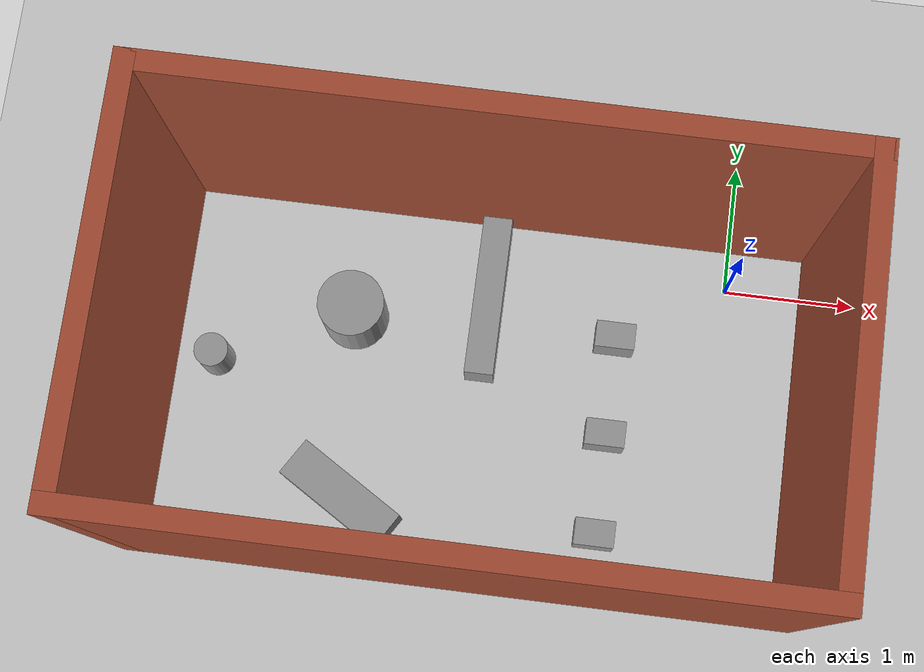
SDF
<sdf version='1.7'>
  <world name='default'>
    <light name='sun' type='directional'>
      <cast_shadows>1</cast_shadows>
      <pose>0 0 10 0 -0 0</pose>
      <diffuse>0.8 0.8 0.8 1</diffuse>
      <specular>0.2 0.2 0.2 1</specular>
      <attenuation>
        <range>1000</range>
        <constant>0.9</constant>
        <linear>0.01</linear>
        <quadratic>0.001</quadratic>
      </attenuation>
      <direction>-0.5 0.1 -0.9</direction>
      <spot>
        <inner_angle>0</inner_angle>
        <outer_angle>0</outer_angle>
        <falloff>0</falloff>
      </spot>
    </light>
    <model name='ground_plane'>
      <static>1</static>
      <link name='link'>
        <collision name='collision'>
          <geometry>
            <plane>
              <normal>0 0 1</normal>
              <size>100 100</size>
            </plane>
          </geometry>
          <max_contacts>10</max_contacts>
          <surface>
            <contact>
              <ode/>
            </contact>
            <bounce/>
            <friction>
              <torsional>
                <ode/>
              </torsional>
              <ode/>
            </friction>
          </surface>
        </collision>
        <visual name='visual'>
          <geometry>
            <plane>
              <normal>0 0 1</normal>
              <size>100 100</size>
            </plane>
          </geometry>
        </visual>
        <self_collide>0</self_collide>
        <enable_wind>0</enable_wind>
        <kinematic>0</kinematic>
      </link>
    </model>
    <gravity>0 0 -9.8</gravity>
    <magnetic_field>6e-06 2.3e-05 -4.2e-05</magnetic_field>
    <atmosphere type='adiabatic'/>
    <physics type='ode'>
      <max_step_size>0.001</max_step_size>
      <real_time_factor>1</real_time_factor>
      <real_time_update_rate>1000</real_time_update_rate>
    </physics>
    <scene>
      <ambient>0.4 0.4 0.4 1</ambient>
      <background>0.7 0.7 0.7 1</background>
      <shadows>1</shadows>
    </scene>
    <wind/>
    <spherical_coordinates>
      <surface_model>EARTH_WGS84</surface_model>
      <latitude_deg>0</latitude_deg>
      <longitude_deg>0</longitude_deg>
      <elevation>0</elevation>
      <heading_deg>0</heading_deg>
    </spherical_coordinates>
    <model name='walls'>
      <pose>-1.7745 -1.03402 0 0 -0 0</pose>
      <link name='Wall_14'>
        <collision name='Wall_14_Collision'>
          <geometry>
            <box>
              <size>3 0.15 2.5</size>
            </box>
          </geometry>
          <pose>0 0 1.25 0 -0 0</pose>
          <max_contacts>10</max_contacts>
          <surface>
            <contact>
              <ode/>
            </contact>
            <bounce/>
            <friction>
              <torsional>
                <ode/>
              </torsional>
              <ode/>
            </friction>
          </surface>
        </collision>
        <visual name='Wall_14_Visual'>
          <pose>0 0 1.25 0 -0 0</pose>
          <geometry>
            <box>
              <size>3 0.15 2.5</size>
            </box>
          </geometry>
          <material>
            <script>
              <uri>file://media/materials/scripts/gazebo.material</uri>
              <name>Gazebo/Bricks</name>
            </script>
            <ambient>1 1 1 1</ambient>
          </material>
          <meta>
            <layer>0</layer>
          </meta>
        </visual>
        <pose>2.425 0 0 0 -0 -1.5708</pose>
        <self_collide>0</self_collide>
        <enable_wind>0</enable_wind>
        <kinematic>0</kinematic>
      </link>
      <link name='Wall_15'>
        <collision name='Wall_15_Collision'>
          <geometry>
            <box>
              <size>5 0.15 2.5</size>
            </box>
          </geometry>
          <pose>0 0 1.25 0 -0 0</pose>
          <max_contacts>10</max_contacts>
          <surface>
            <contact>
              <ode/>
            </contact>
            <bounce/>
            <friction>
              <torsional>
                <ode/>
              </torsional>
              <ode/>
            </friction>
          </surface>
        </collision>
        <visual name='Wall_15_Visual'>
          <pose>0 0 1.25 0 -0 0</pose>
          <geometry>
            <box>
              <size>5 0.15 2.5</size>
            </box>
          </geometry>
          <material>
            <script>
              <uri>file://media/materials/scripts/gazebo.material</uri>
              <name>Gazebo/Bricks</name>
            </script>
            <ambient>1 1 1 1</ambient>
          </material>
          <meta>
            <layer>0</layer>
          </meta>
        </visual>
        <pose>-0 -1.425 0 0 -0 3.14159</pose>
        <self_collide>0</self_collide>
        <enable_wind>0</enable_wind>
        <kinematic>0</kinematic>
      </link>
      <link name='Wall_16'>
        <collision name='Wall_16_Collision'>
          <geometry>
            <box>
              <size>3 0.15 2.5</size>
            </box>
          </geometry>
          <pose>0 0 1.25 0 -0 0</pose>
          <max_contacts>10</max_contacts>
          <surface>
            <contact>
              <ode/>
            </contact>
            <bounce/>
            <friction>
              <torsional>
                <ode/>
              </torsional>
              <ode/>
            </friction>
          </surface>
        </collision>
        <visual name='Wall_16_Visual'>
          <pose>0 0 1.25 0 -0 0</pose>
          <geometry>
            <box>
              <size>3 0.15 2.5</size>
            </box>
          </geometry>
          <material>
            <script>
              <uri>file://media/materials/scripts/gazebo.material</uri>
              <name>Gazebo/Bricks</name>
            </script>
            <ambient>1 1 1 1</ambient>
          </material>
          <meta>
            <layer>0</layer>
          </meta>
        </visual>
        <pose>-2.425 0 0 0 -0 1.5708</pose>
        <self_collide>0</self_collide>
        <enable_wind>0</enable_wind>
        <kinematic>0</kinematic>
      </link>
      <link name='Wall_7'>
        <collision name='Wall_7_Collision'>
          <geometry>
            <box>
              <size>5 0.15 2.5</size>
            </box>
          </geometry>
          <pose>0 0 1.25 0 -0 0</pose>
          <max_contacts>10</max_contacts>
          <surface>
            <contact>
              <ode/>
            </contact>
            <bounce/>
            <friction>
              <torsional>
                <ode/>
              </torsional>
              <ode/>
            </friction>
          </surface>
        </collision>
        <visual name='Wall_7_Visual'>
          <pose>0 0 1.25 0 -0 0</pose>
          <geometry>
            <box>
              <size>5 0.15 2.5</size>
            </box>
          </geometry>
          <material>
            <script>
              <uri>file://media/materials/scripts/gazebo.material</uri>
              <name>Gazebo/Bricks</name>
            </script>
            <ambient>1 1 1 1</ambient>
          </material>
          <meta>
            <layer>0</layer>
          </meta>
        </visual>
        <pose>-0 1.425 0 0 -0 0</pose>
        <self_collide>0</self_collide>
        <enable_wind>0</enable_wind>
        <kinematic>0</kinematic>
      </link>
      <static>1</static>
    </model>
    <model name='walls_seven'>
      <link name='link_2'>
        <inertial>
          <mass>1</mass>
          <inertia>
            <ixx>0.166667</ixx>
            <ixy>0</ixy>
            <ixz>0</ixz>
            <iyy>0.166667</iyy>
            <iyz>0</iyz>
            <izz>0.166667</izz>
          </inertia>
          <pose>-0 0 0 0 -0 0</pose>
        </inertial>
        <pose>-0.006667 0.75 0.125 0 -0 0</pose>
        <gravity>1</gravity>
        <self_collide>0</self_collide>
        <kinematic>0</kinematic>
        <enable_wind>0</enable_wind>
        <visual name='visual'>
          <pose>0 0 0 0 -0 0</pose>
          <geometry>
            <box>
              <size>0.3 0.2 0.3</size>
            </box>
          </geometry>
          <material>
            <lighting>1</lighting>
            <script>
              <uri>file://media/materials/scripts/gazebo.material</uri>
              <name>Gazebo/Grey</name>
            </script>
            <shader type='pixel'>
              <normal_map>__default__</normal_map>
            </shader>
            <ambient>0.3 0.3 0.3 1</ambient>
            <diffuse>0.7 0.7 0.7 1</diffuse>
            <specular>0.01 0.01 0.01 1</specular>
            <emissive>0 0 0 1</emissive>
          </material>
          <transparency>0</transparency>
          <cast_shadows>1</cast_shadows>
        </visual>
        <collision name='collision'>
          <laser_retro>0</laser_retro>
          <max_contacts>10</max_contacts>
          <pose>0 0 0 0 -0 0</pose>
          <geometry>
            <box>
              <size>0.3 0.2 0.3</size>
            </box>
          </geometry>
          <surface>
            <friction>
              <ode>
                <mu>1</mu>
                <mu2>1</mu2>
                <fdir1>0 0 0</fdir1>
                <slip1>0</slip1>
                <slip2>0</slip2>
              </ode>
              <torsional>
                <coefficient>1</coefficient>
                <patch_radius>0</patch_radius>
                <surface_radius>0</surface_radius>
                <use_patch_radius>1</use_patch_radius>
                <ode>
                  <slip>0</slip>
                </ode>
              </torsional>
            </friction>
            <bounce>
              <restitution_coefficient>0</restitution_coefficient>
              <threshold>1e+06</threshold>
            </bounce>
            <contact>
              <collide_without_contact>0</collide_without_contact>
              <collide_without_contact_bitmask>1</collide_without_contact_bitmask>
              <collide_bitmask>1</collide_bitmask>
              <ode>
                <soft_cfm>0</soft_cfm>
                <soft_erp>0.2</soft_erp>
                <kp>1e+13</kp>
                <kd>1</kd>
                <max_vel>0.01</max_vel>
                <min_depth>0</min_depth>
              </ode>
              <bullet>
                <split_impulse>1</split_impulse>
                <split_impulse_penetration_threshold>-0.01</split_impulse_penetration_threshold>
                <soft_cfm>0</soft_cfm>
                <soft_erp>0.2</soft_erp>
                <kp>1e+13</kp>
                <kd>1</kd>
              </bullet>
            </contact>
          </surface>
        </collision>
      </link>
      <link name='link_2_clone'>
        <inertial>
          <mass>1</mass>
          <inertia>
            <ixx>0.166667</ixx>
            <ixy>0</ixy>
            <ixz>0</ixz>
            <iyy>0.166667</iyy>
            <iyz>0</iyz>
            <izz>0.166667</izz>
          </inertia>
          <pose>0 0 0 0 -0 0</pose>
        </inertial>
        <pose>0.003333 -0.75 0.125 0 -0 0</pose>
        <gravity>1</gravity>
        <self_collide>0</self_collide>
        <kinematic>0</kinematic>
        <enable_wind>0</enable_wind>
        <visual name='visual'>
          <pose>0 0 0 0 -0 0</pose>
          <geometry>
            <box>
              <size>0.3 0.2 0.3</size>
            </box>
          </geometry>
          <material>
            <lighting>1</lighting>
            <script>
              <uri>file://media/materials/scripts/gazebo.material</uri>
              <name>Gazebo/Grey</name>
            </script>
            <shader type='pixel'>
              <normal_map>__default__</normal_map>
            </shader>
            <ambient>0.3 0.3 0.3 1</ambient>
            <diffuse>0.7 0.7 0.7 1</diffuse>
            <specular>0.01 0.01 0.01 1</specular>
            <emissive>0 0 0 1</emissive>
          </material>
          <transparency>0</transparency>
          <cast_shadows>1</cast_shadows>
        </visual>
        <collision name='collision'>
          <laser_retro>0</laser_retro>
          <max_contacts>10</max_contacts>
          <pose>0 0 0 0 -0 0</pose>
          <geometry>
            <box>
              <size>0.3 0.2 0.3</size>
            </box>
          </geometry>
          <surface>
            <friction>
              <ode>
                <mu>1</mu>
                <mu2>1</mu2>
                <fdir1>0 0 0</fdir1>
                <slip1>0</slip1>
                <slip2>0</slip2>
              </ode>
              <torsional>
                <coefficient>1</coefficient>
                <patch_radius>0</patch_radius>
                <surface_radius>0</surface_radius>
                <use_patch_radius>1</use_patch_radius>
                <ode>
                  <slip>0</slip>
                </ode>
              </torsional>
            </friction>
            <bounce>
              <restitution_coefficient>0</restitution_coefficient>
              <threshold>1e+06</threshold>
            </bounce>
            <contact>
              <collide_without_contact>0</collide_without_contact>
              <collide_without_contact_bitmask>1</collide_without_contact_bitmask>
              <collide_bitmask>1</collide_bitmask>
              <ode>
                <soft_cfm>0</soft_cfm>
                <soft_erp>0.2</soft_erp>
                <kp>1e+13</kp>
                <kd>1</kd>
                <max_vel>0.01</max_vel>
                <min_depth>0</min_depth>
              </ode>
              <bullet>
                <split_impulse>1</split_impulse>
                <split_impulse_penetration_threshold>-0.01</split_impulse_penetration_threshold>
                <soft_cfm>0</soft_cfm>
                <soft_erp>0.2</soft_erp>
                <kp>1e+13</kp>
                <kd>1</kd>
              </bullet>
            </contact>
          </surface>
        </collision>
      </link>
      <link name='link_3'>
        <inertial>
          <mass>1</mass>
          <inertia>
            <ixx>0.166667</ixx>
            <ixy>0</ixy>
            <ixz>0</ixz>
            <iyy>0.166667</iyy>
            <iyz>0</iyz>
            <izz>0.166667</izz>
          </inertia>
          <pose>0 0 0 0 -0 0</pose>
        </inertial>
        <pose>0 0 0.125 0 -0 0</pose>
        <gravity>1</gravity>
        <self_collide>0</self_collide>
        <kinematic>0</kinematic>
        <enable_wind>0</enable_wind>
        <visual name='visual'>
          <pose>0 0 0 0 -0 0</pose>
          <geometry>
            <box>
              <size>0.3 0.2 0.3</size>
            </box>
          </geometry>
          <material>
            <lighting>1</lighting>
            <script>
              <uri>file://media/materials/scripts/gazebo.material</uri>
              <name>Gazebo/Grey</name>
            </script>
            <shader type='pixel'>
              <normal_map>__default__</normal_map>
            </shader>
            <ambient>0.3 0.3 0.3 1</ambient>
            <diffuse>0.7 0.7 0.7 1</diffuse>
            <specular>0.01 0.01 0.01 1</specular>
            <emissive>0 0 0 1</emissive>
          </material>
          <transparency>0</transparency>
          <cast_shadows>1</cast_shadows>
        </visual>
        <collision name='collision'>
          <laser_retro>0</laser_retro>
          <max_contacts>10</max_contacts>
          <pose>0 0 0 0 -0 0</pose>
          <geometry>
            <box>
              <size>0.3 0.2 0.3</size>
            </box>
          </geometry>
          <surface>
            <friction>
              <ode>
                <mu>1</mu>
                <mu2>1</mu2>
                <fdir1>0 0 0</fdir1>
                <slip1>0</slip1>
                <slip2>0</slip2>
              </ode>
              <torsional>
                <coefficient>1</coefficient>
                <patch_radius>0</patch_radius>
                <surface_radius>0</surface_radius>
                <use_patch_radius>1</use_patch_radius>
                <ode>
                  <slip>0</slip>
                </ode>
              </torsional>
            </friction>
            <bounce>
              <restitution_coefficient>0</restitution_coefficient>
              <threshold>1e+06</threshold>
            </bounce>
            <contact>
              <collide_without_contact>0</collide_without_contact>
              <collide_without_contact_bitmask>1</collide_without_contact_bitmask>
              <collide_bitmask>1</collide_bitmask>
              <ode>
                <soft_cfm>0</soft_cfm>
                <soft_erp>0.2</soft_erp>
                <kp>1e+13</kp>
                <kd>1</kd>
                <max_vel>0.01</max_vel>
                <min_depth>0</min_depth>
              </ode>
              <bullet>
                <split_impulse>1</split_impulse>
                <split_impulse_penetration_threshold>-0.01</split_impulse_penetration_threshold>
                <soft_cfm>0</soft_cfm>
                <soft_erp>0.2</soft_erp>
                <kp>1e+13</kp>
                <kd>1</kd>
              </bullet>
            </contact>
          </surface>
        </collision>
      </link>
      <link name='link_5'>
        <inertial>
          <mass>1</mass>
          <inertia>
            <ixx>0.166667</ixx>
            <ixy>0</ixy>
            <ixz>0</ixz>
            <iyy>0.166667</iyy>
            <iyz>0</iyz>
            <izz>0.166667</izz>
          </inertia>
          <pose>0.1 0 0 0 -0 0</pose>
        </inertial>
        <pose>-1.9 -0.7 0.155 0 -0 1.0177</pose>
        <gravity>1</gravity>
        <self_collide>0</self_collide>
        <kinematic>0</kinematic>
        <enable_wind>0</enable_wind>
        <visual name='visual'>
          <pose>0 0 0 0 -0 0</pose>
          <geometry>
            <box>
              <size>0.31 0.9 0.31</size>
            </box>
          </geometry>
          <material>
            <lighting>1</lighting>
            <script>
              <uri>file://media/materials/scripts/gazebo.material</uri>
              <name>Gazebo/Grey</name>
            </script>
            <shader type='pixel'>
              <normal_map>__default__</normal_map>
            </shader>
            <ambient>0.3 0.3 0.3 1</ambient>
            <diffuse>0.7 0.7 0.7 1</diffuse>
            <specular>0.01 0.01 0.01 1</specular>
            <emissive>0 0 0 1</emissive>
          </material>
          <transparency>0</transparency>
          <cast_shadows>1</cast_shadows>
        </visual>
        <collision name='collision'>
          <laser_retro>0</laser_retro>
          <max_contacts>10</max_contacts>
          <pose>0 0 0 0 -0 0</pose>
          <geometry>
            <box>
              <size>0.31 0.9 0.31</size>
            </box>
          </geometry>
          <surface>
            <friction>
              <ode>
                <mu>1</mu>
                <mu2>1</mu2>
                <fdir1>0 0 0</fdir1>
                <slip1>0</slip1>
                <slip2>0</slip2>
              </ode>
              <torsional>
                <coefficient>1</coefficient>
                <patch_radius>0</patch_radius>
                <surface_radius>0</surface_radius>
                <use_patch_radius>1</use_patch_radius>
                <ode>
                  <slip>0</slip>
                </ode>
              </torsional>
            </friction>
            <bounce>
              <restitution_coefficient>0</restitution_coefficient>
              <threshold>1e+06</threshold>
            </bounce>
            <contact>
              <collide_without_contact>0</collide_without_contact>
              <collide_without_contact_bitmask>1</collide_without_contact_bitmask>
              <collide_bitmask>1</collide_bitmask>
              <ode>
                <soft_cfm>0</soft_cfm>
                <soft_erp>0.2</soft_erp>
                <kp>1e+13</kp>
                <kd>1</kd>
                <max_vel>0.01</max_vel>
                <min_depth>0</min_depth>
              </ode>
              <bullet>
                <split_impulse>1</split_impulse>
                <split_impulse_penetration_threshold>-0.01</split_impulse_penetration_threshold>
                <soft_cfm>0</soft_cfm>
                <soft_erp>0.2</soft_erp>
                <kp>1e+13</kp>
                <kd>1</kd>
              </bullet>
            </contact>
          </surface>
        </collision>
      </link>
      <link name='link_6'>
        <inertial>
          <mass>1</mass>
          <inertia>
            <ixx>0.145833</ixx>
            <ixy>0</ixy>
            <ixz>0</ixz>
            <iyy>0.145833</iyy>
            <iyz>0</iyz>
            <izz>0.125</izz>
          </inertia>
          <pose>0 0 0 0 -0 0</pose>
        </inertial>
        <pose>-2 0.7 0.25 0 -0 0</pose>
        <gravity>1</gravity>
        <self_collide>0</self_collide>
        <kinematic>0</kinematic>
        <enable_wind>0</enable_wind>
        <visual name='visual'>
          <pose>0 0 0 0 -0 0</pose>
          <geometry>
            <cylinder>
              <radius>0.25</radius>
              <length>0.5</length>
            </cylinder>
          </geometry>
          <material>
            <lighting>1</lighting>
            <script>
              <uri>file://media/materials/scripts/gazebo.material</uri>
              <name>Gazebo/Grey</name>
            </script>
            <shader type='pixel'>
              <normal_map>__default__</normal_map>
            </shader>
            <ambient>0.3 0.3 0.3 1</ambient>
            <diffuse>0.7 0.7 0.7 1</diffuse>
            <specular>0.01 0.01 0.01 1</specular>
            <emissive>0 0 0 1</emissive>
          </material>
          <transparency>0</transparency>
          <cast_shadows>1</cast_shadows>
        </visual>
        <collision name='collision'>
          <laser_retro>0</laser_retro>
          <max_contacts>10</max_contacts>
          <pose>0 0 0 0 -0 0</pose>
          <geometry>
            <cylinder>
              <radius>0.25</radius>
              <length>0.5</length>
            </cylinder>
          </geometry>
          <surface>
            <friction>
              <ode>
                <mu>1</mu>
                <mu2>1</mu2>
                <fdir1>0 0 0</fdir1>
                <slip1>0</slip1>
                <slip2>0</slip2>
              </ode>
              <torsional>
                <coefficient>1</coefficient>
                <patch_radius>0</patch_radius>
                <surface_radius>0</surface_radius>
                <use_patch_radius>1</use_patch_radius>
                <ode>
                  <slip>0</slip>
                </ode>
              </torsional>
            </friction>
            <bounce>
              <restitution_coefficient>0</restitution_coefficient>
              <threshold>1e+06</threshold>
            </bounce>
            <contact>
              <collide_without_contact>0</collide_without_contact>
              <collide_without_contact_bitmask>1</collide_without_contact_bitmask>
              <collide_bitmask>1</collide_bitmask>
              <ode>
                <soft_cfm>0</soft_cfm>
                <soft_erp>0.2</soft_erp>
                <kp>1e+13</kp>
                <kd>1</kd>
                <max_vel>0.01</max_vel>
                <min_depth>0</min_depth>
              </ode>
              <bullet>
                <split_impulse>1</split_impulse>
                <split_impulse_penetration_threshold>-0.01</split_impulse_penetration_threshold>
                <soft_cfm>0</soft_cfm>
                <soft_erp>0.2</soft_erp>
                <kp>1e+13</kp>
                <kd>1</kd>
              </bullet>
            </contact>
          </surface>
        </collision>
      </link>
      <link name='link_7'>
        <inertial>
          <mass>1</mass>
          <inertia>
            <ixx>0.145833</ixx>
            <ixy>0</ixy>
            <ixz>0</ixz>
            <iyy>0.145833</iyy>
            <iyz>0</iyz>
            <izz>0.125</izz>
          </inertia>
          <pose>0 0 0 0 -0 0</pose>
        </inertial>
        <pose>-2.93633 0.189525 0.5 0 -0 0</pose>
        <gravity>1</gravity>
        <self_collide>0</self_collide>
        <kinematic>0</kinematic>
        <enable_wind>0</enable_wind>
        <visual name='visual'>
          <pose>0 0 0 0 -0 0</pose>
          <geometry>
            <cylinder>
              <radius>0.125</radius>
              <length>0.35</length>
            </cylinder>
          </geometry>
          <material>
            <lighting>1</lighting>
            <script>
              <uri>file://media/materials/scripts/gazebo.material</uri>
              <name>Gazebo/Grey</name>
            </script>
            <shader type='pixel'>
              <normal_map>__default__</normal_map>
            </shader>
            <ambient>0.3 0.3 0.3 1</ambient>
            <diffuse>0.7 0.7 0.7 1</diffuse>
            <specular>0.01 0.01 0.01 1</specular>
            <emissive>0 0 0 1</emissive>
          </material>
          <transparency>0</transparency>
          <cast_shadows>1</cast_shadows>
        </visual>
        <collision name='collision'>
          <laser_retro>0</laser_retro>
          <max_contacts>10</max_contacts>
          <pose>0 0 0 0 -0 0</pose>
          <geometry>
            <cylinder>
              <radius>0.125</radius>
              <length>0.35</length>
            </cylinder>
          </geometry>
          <surface>
            <friction>
              <ode>
                <mu>1</mu>
                <mu2>1</mu2>
                <fdir1>0 0 0</fdir1>
                <slip1>0</slip1>
                <slip2>0</slip2>
              </ode>
              <torsional>
                <coefficient>1</coefficient>
                <patch_radius>0</patch_radius>
                <surface_radius>0</surface_radius>
                <use_patch_radius>1</use_patch_radius>
                <ode>
                  <slip>0</slip>
                </ode>
              </torsional>
            </friction>
            <bounce>
              <restitution_coefficient>0</restitution_coefficient>
              <threshold>1e+06</threshold>
            </bounce>
            <contact>
              <collide_without_contact>0</collide_without_contact>
              <collide_without_contact_bitmask>1</collide_without_contact_bitmask>
              <collide_bitmask>1</collide_bitmask>
              <ode>
                <soft_cfm>0</soft_cfm>
                <soft_erp>0.2</soft_erp>
                <kp>1e+13</kp>
                <kd>1</kd>
                <max_vel>0.01</max_vel>
                <min_depth>0</min_depth>
              </ode>
              <bullet>
                <split_impulse>1</split_impulse>
                <split_impulse_penetration_threshold>-0.01</split_impulse_penetration_threshold>
                <soft_cfm>0</soft_cfm>
                <soft_erp>0.2</soft_erp>
                <kp>1e+13</kp>
                <kd>1</kd>
              </bullet>
            </contact>
          </surface>
        </collision>
      </link>
      <static>0</static>
      <allow_auto_disable>1</allow_auto_disable>
      <pose>-0.803333 -1.25 0 0 -0 0</pose>
    </model>
    <model name='final_world'>
      <link name='link_4'>
        <inertial>
          <mass>1</mass>
          <inertia>
            <ixx>0.166667</ixx>
            <ixy>0</ixy>
            <ixz>0</ixz>
            <iyy>0.166667</iyy>
            <iyz>0</iyz>
            <izz>0.166667</izz>
          </inertia>
          <pose>0 0 0 0 -0 0</pose>
        </inertial>
        <pose>0 0 0 0 -0 0</pose>
        <gravity>1</gravity>
        <self_collide>0</self_collide>
        <kinematic>0</kinematic>
        <enable_wind>0</enable_wind>
        <visual name='visual'>
          <pose>0 0 0 0 -0 0</pose>
          <geometry>
            <box>
              <size>0.22 1.22 0.32</size>
            </box>
          </geometry>
          <material>
            <lighting>1</lighting>
            <script>
              <uri>file://media/materials/scripts/gazebo.material</uri>
              <name>Gazebo/Grey</name>
            </script>
            <shader type='pixel'>
              <normal_map>__default__</normal_map>
            </shader>
            <ambient>0.3 0.3 0.3 1</ambient>
            <diffuse>0.7 0.7 0.7 1</diffuse>
            <specular>0.01 0.01 0.01 1</specular>
            <emissive>0 0 0 1</emissive>
          </material>
          <transparency>0</transparency>
          <cast_shadows>1</cast_shadows>
        </visual>
        <collision name='collision'>
          <laser_retro>0</laser_retro>
          <max_contacts>10</max_contacts>
          <pose>0 0 0 0 -0 0</pose>
          <geometry>
            <box>
              <size>0.22 1.22 0.32</size>
            </box>
          </geometry>
          <surface>
            <friction>
              <ode>
                <mu>1</mu>
                <mu2>1</mu2>
                <fdir1>0 0 0</fdir1>
                <slip1>0</slip1>
                <slip2>0</slip2>
              </ode>
              <torsional>
                <coefficient>1</coefficient>
                <patch_radius>0</patch_radius>
                <surface_radius>0</surface_radius>
                <use_patch_radius>1</use_patch_radius>
                <ode>
                  <slip>0</slip>
                </ode>
              </torsional>
            </friction>
            <bounce>
              <restitution_coefficient>0</restitution_coefficient>
              <threshold>1e+06</threshold>
            </bounce>
            <contact>
              <collide_without_contact>0</collide_without_contact>
              <collide_without_contact_bitmask>1</collide_without_contact_bitmask>
              <collide_bitmask>1</collide_bitmask>
              <ode>
                <soft_cfm>0</soft_cfm>
                <soft_erp>0.2</soft_erp>
                <kp>1e+13</kp>
                <kd>1</kd>
                <max_vel>0.01</max_vel>
                <min_depth>0</min_depth>
              </ode>
              <bullet>
                <split_impulse>1</split_impulse>
                <split_impulse_penetration_threshold>-0.01</split_impulse_penetration_threshold>
                <soft_cfm>0</soft_cfm>
                <soft_erp>0.2</soft_erp>
                <kp>1e+13</kp>
                <kd>1</kd>
              </bullet>
            </contact>
          </surface>
        </collision>
      </link>
      <static>0</static>
      <allow_auto_disable>1</allow_auto_disable>
      <pose>-1.8 -0.32 0.16 0 -0 0</pose>
    </model>
    <gui fullscreen='0'>
      <camera name='user_camera'>
        <pose>-3.66944 -2.6767 12.5254 -0 1.3098 0.868621</pose>
        <view_controller>orbit</view_controller>
        <projection_type>perspective</projection_type>
      </camera>
    </gui>
  </world>
</sdf>
